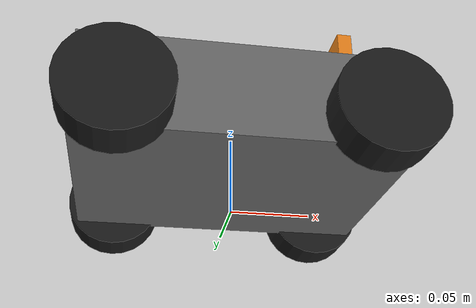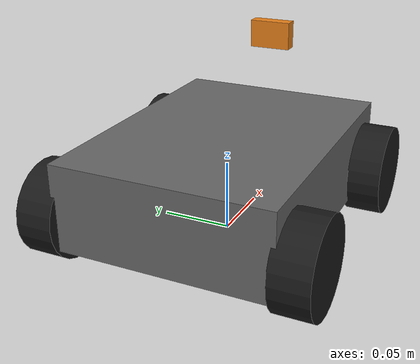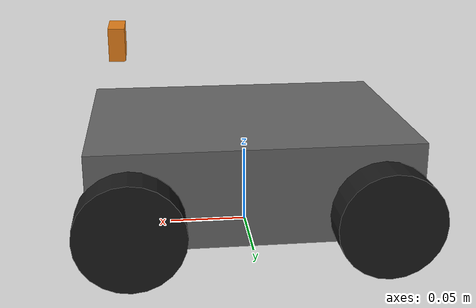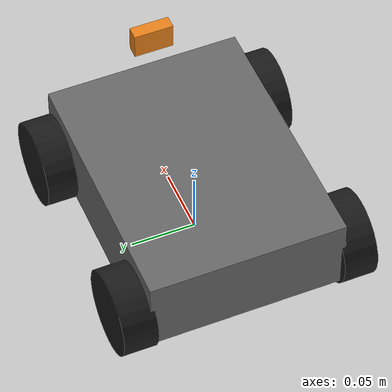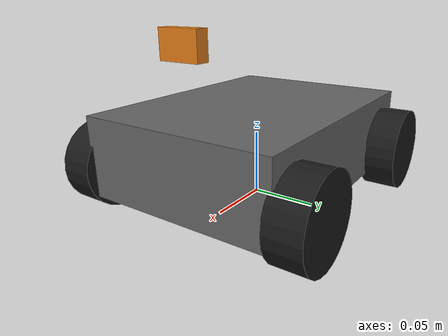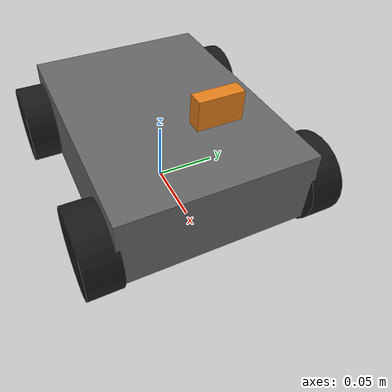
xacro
<?xml version="1.0"?>
<robot name="kobold" xmlns:xacro="http://www.ros.org/wiki/xacro">

  <!-- ==== measure these ==== -->
  <xacro:property name="base_length" value="0.200"/>
  <xacro:property name="base_width"  value="0.150"/>
  <xacro:property name="base_height" value="0.060"/>
  <xacro:property name="wheel_radius" value="0.0325"/>
  <xacro:property name="wheel_width"  value="0.026"/>
  <xacro:property name="wheel_x"      value="0.075"/>
  <xacro:property name="wheel_y"      value="0.085"/>
  <xacro:property name="base_z"       value="0.045"/>

  <material name="grey">  <color rgba="0.4 0.4 0.4 1.0"/></material>
  <material name="black"> <color rgba="0.1 0.1 0.1 1.0"/></material>
  <material name="orange"><color rgba="0.9 0.5 0.1 1.0"/></material>

  <!-- base_footprint sits on the ground plane; Nav2 expects this. -->
  <link name="base_footprint"/>

  <link name="base_link">
    <visual>
      <geometry><box size="${base_length} ${base_width} ${base_height}"/></geometry>
      <material name="grey"/>
    </visual>
    <collision>
      <geometry><box size="${base_length} ${base_width} ${base_height}"/></geometry>
    </collision>
    <inertial>
      <mass value="1.2"/>
      <inertia ixx="0.005" ixy="0" ixz="0" iyy="0.008" iyz="0" izz="0.010"/>
    </inertial>
  </link>

  <joint name="base_footprint_joint" type="fixed">
    <parent link="base_footprint"/>
    <child link="base_link"/>
    <origin xyz="0 0 ${base_z}"/>
  </joint>

  <!-- ==== wheels ==== -->
  <xacro:macro name="wheel" params="name x y">
    <link name="${name}_wheel">
      <visual>
        <origin rpy="1.5708 0 0"/>
        <geometry><cylinder radius="${wheel_radius}" length="${wheel_width}"/></geometry>
        <material name="black"/>
      </visual>
      <collision>
        <origin rpy="1.5708 0 0"/>
        <geometry><cylinder radius="${wheel_radius}" length="${wheel_width}"/></geometry>
      </collision>
      <inertial>
        <mass value="0.05"/>
        <inertia ixx="1e-5" ixy="0" ixz="0" iyy="1e-5" iyz="0" izz="1e-5"/>
      </inertial>
    </link>
    <joint name="${name}_wheel_joint" type="fixed">
      <parent link="base_link"/>
      <child link="${name}_wheel"/>
      <origin xyz="${x} ${y} ${-base_z + wheel_radius}"/>
    </joint>
  </xacro:macro>

  <xacro:wheel name="front_left"  x="${wheel_x}"  y="${wheel_y}"/>
  <xacro:wheel name="front_right" x="${wheel_x}"  y="${-wheel_y}"/>
  <xacro:wheel name="rear_left"   x="${-wheel_x}" y="${wheel_y}"/>
  <xacro:wheel name="rear_right"  x="${-wheel_x}" y="${-wheel_y}"/>

  <!-- ==== IMU ==== -->
  <!-- Mount near the centre of rotation: gyro yaw is the load-bearing signal
       for heading, and off-centre mounting couples linear accel into it. -->
  <link name="imu_link"/>
  <joint name="imu_joint" type="fixed">
    <parent link="base_link"/>
    <child link="imu_link"/>
    <origin xyz="0 0 0.01"/>
  </joint>

  <!-- ==== ultrasonic ring ==== -->
  <xacro:macro name="sonar" params="name x y yaw">
    <link name="ultrasonic_${name}"/>
    <joint name="ultrasonic_${name}_joint" type="fixed">
      <parent link="base_link"/>
      <child link="ultrasonic_${name}"/>
      <origin xyz="${x} ${y} 0.02" rpy="0 0 ${yaw}"/>
    </joint>
  </xacro:macro>

  <xacro:sonar name="front" x="${base_length/2}"  y="0" yaw="0"/>
  <xacro:sonar name="back"  x="${-base_length/2}" y="0" yaw="3.14159"/>
  <xacro:sonar name="left"  x="0" y="${base_width/2}"  yaw="1.5708"/>
  <xacro:sonar name="right" x="0" y="${-base_width/2}" yaw="-1.5708"/>

  <!-- ==== cliff sensors: four corners, facing DOWN ==== -->
  <!-- Wired to the drive board, not the sense board: a table edge has a ~166 ms
       deadline at 0.3 m/s and a round trip through the SBC does not fit. -->
  <xacro:macro name="cliff" params="name x y">
    <link name="cliff_${name}"/>
    <joint name="cliff_${name}_joint" type="fixed">
      <parent link="base_link"/>
      <child link="cliff_${name}"/>
      <origin xyz="${x} ${y} ${-base_height/2}" rpy="0 1.5708 0"/>
    </joint>
  </xacro:macro>

  <xacro:cliff name="front_left"  x="${base_length/2 - 0.01}"  y="${base_width/2 - 0.01}"/>
  <xacro:cliff name="front_right" x="${base_length/2 - 0.01}"  y="${-base_width/2 + 0.01}"/>
  <xacro:cliff name="back_left"   x="${-base_length/2 + 0.01}" y="${base_width/2 - 0.01}"/>
  <xacro:cliff name="back_right"  x="${-base_length/2 + 0.01}" y="${-base_width/2 + 0.01}"/>

  <!-- ==== camera on the pan/tilt head ==== -->
  <link name="camera_link">
    <visual>
      <geometry><box size="0.01 0.03 0.02"/></geometry>
      <material name="orange"/>
    </visual>
  </link>
  <joint name="camera_joint" type="fixed">
    <parent link="base_link"/>
    <child link="camera_link"/>
    <origin xyz="${base_length/2 - 0.02} 0 ${base_height/2 + 0.05}"/>
  </joint>

  <!-- Optical frame: REP-103 says z forward, x right, y down for cameras. -->
  <link name="camera_optical_frame"/>
  <joint name="camera_optical_joint" type="fixed">
    <parent link="camera_link"/>
    <child link="camera_optical_frame"/>
    <origin rpy="-1.5708 0 -1.5708"/>
  </joint>

  <!-- ==== lidar (Phase 5, if fitted) ==== -->
  <link name="laser_frame"/>
  <joint name="laser_joint" type="fixed">
    <parent link="base_link"/>
    <child link="laser_frame"/>
    <origin xyz="0 0 ${base_height/2 + 0.03}"/>
  </joint>

</robot>
